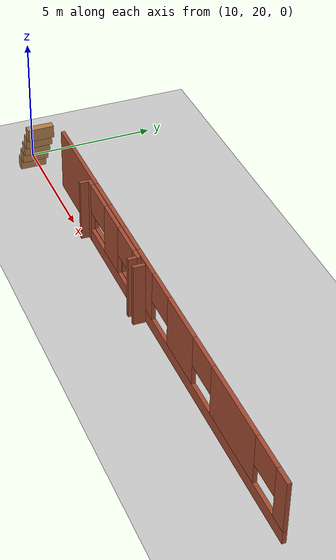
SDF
<sdf version="1.6">
 <world name="default">
  <model name="ground_plane">
   <static>1</static>
   <link name="link">
    <collision name="collision">
     <geometry><plane><normal>0 0 1</normal><size>100 100</size></plane></geometry>
     <surface><friction><ode><mu>100</mu><mu2>50</mu2></ode></friction></surface>
    </collision>
    <visual name="visual">
     <cast_shadows>0</cast_shadows>
     <geometry><plane><normal>0 0 1</normal><size>100 100</size></plane></geometry>
     <material>
      <script><uri>file://media/materials/scripts/gazebo.material</uri><name>Gazebo/Grey</name></script>
     </material>
    </visual>
   </link>
  </model>
  <model name="CVSSP">
   <pose>23.8714 24.094 0 0 -0 0</pose>
   <link name="Stairs_11">
    <visual name="Stairs_11_Visual_0">
     <pose>-13.1847 -4.32692 0.25 0 -0 1.5708</pose>
     <geometry><box><size>1.03 0.296708 0.5</size></box></geometry>
     <material>
      <script><uri>file://media/materials/scripts/gazebo.material</uri><name>Gazebo/Wood</name></script>
      <ambient>1 1 1 1</ambient>
     </material>
    </visual>
    <collision name="Stairs_11_Collision_0">
     <geometry><box><size>1.03 0.296708 0.5</size></box></geometry>
     <pose>-13.1847 -4.32692 0.25 0 -0 1.5708</pose>
    </collision>
    <visual name="Stairs_11_Visual_1">
     <pose>-12.888 -4.32692 0.75 0 -0 1.5708</pose>
     <geometry><box><size>1.03 0.296708 0.5</size></box></geometry>
     <material>
      <script><uri>file://media/materials/scripts/gazebo.material</uri><name>Gazebo/Wood</name></script>
      <ambient>1 1 1 1</ambient>
     </material>
    </visual>
    <collision name="Stairs_11_Collision_1">
     <geometry><box><size>1.03 0.296708 0.5</size></box></geometry>
     <pose>-12.888 -4.32692 0.75 0 -0 1.5708</pose>
    </collision>
    <visual name="Stairs_11_Visual_2">
     <pose>-12.5913 -4.32692 1.25 0 -0 1.5708</pose>
     <geometry><box><size>1.03 0.296708 0.5</size></box></geometry>
     <material>
      <script><uri>file://media/materials/scripts/gazebo.material</uri><name>Gazebo/Wood</name></script>
      <ambient>1 1 1 1</ambient>
     </material>
    </visual>
    <collision name="Stairs_11_Collision_2">
     <geometry><box><size>1.03 0.296708 0.5</size></box></geometry>
     <pose>-12.5913 -4.32692 1.25 0 -0 1.5708</pose>
    </collision>
    <visual name="Stairs_11_Visual_3">
     <pose>-12.2946 -4.32692 1.75 0 -0 1.5708</pose>
     <geometry><box><size>1.03 0.296708 0.5</size></box></geometry>
     <material>
      <script><uri>file://media/materials/scripts/gazebo.material</uri><name>Gazebo/Wood</name></script>
      <ambient>1 1 1 1</ambient>
     </material>
    </visual>
    <collision name="Stairs_11_Collision_3">
     <geometry><box><size>1.03 0.296708 0.5</size></box></geometry>
     <pose>-12.2946 -4.32692 1.75 0 -0 1.5708</pose>
    </collision>
    <visual name="Stairs_11_Visual_4">
     <pose>-11.9979 -4.32692 2.25 0 -0 1.5708</pose>
     <geometry><box><size>1.03 0.296708 0.5</size></box></geometry>
     <material>
      <script><uri>file://media/materials/scripts/gazebo.material</uri><name>Gazebo/Wood</name></script>
      <ambient>1 1 1 1</ambient>
     </material>
    </visual>
    <collision name="Stairs_11_Collision_4">
     <geometry><box><size>1.03 0.296708 0.5</size></box></geometry>
     <pose>-11.9979 -4.32692 2.25 0 -0 1.5708</pose>
    </collision>
   </link>
   <link name="Wall_464">
    <pose>-1.6141 -3.60482 0 0 -0 0</pose>
    <visual name="Wall_464_Visual_0">
     <pose>-7.8743 0 1.25 0 -0 0</pose>
     <geometry><box><size>3.7514 0.15 2.5</size></box></geometry>
     <material>
      <script><uri>file://media/materials/scripts/gazebo.material</uri><name>Gazebo/Bricks</name></script>
      <ambient>1 1 1 1</ambient>
     </material>
    </visual>
    <collision name="Wall_464_Collision_0">
     <geometry><box><size>3.7514 0.15 2.5</size></box></geometry>
     <pose>-7.8743 0 1.25 0 -0 0</pose>
    </collision>
    <visual name="Wall_464_Visual_1">
     <pose>1.8757 0 0.25 0 -0 0</pose>
     <geometry><box><size>15.7486 0.15 0.5</size></box></geometry>
     <material>
      <script><uri>file://media/materials/scripts/gazebo.material</uri><name>Gazebo/Bricks</name></script>
      <ambient>1 1 1 1</ambient>
     </material>
    </visual>
    <collision name="Wall_464_Collision_1">
     <geometry><box><size>15.7486 0.15 0.5</size></box></geometry>
     <pose>1.8757 0 0.25 0 -0 0</pose>
    </collision>
    <visual name="Wall_464_Visual_2">
     <pose>-3.89918 0 1.5 0 -0 0</pose>
     <geometry><box><size>1.36967 0.15 2</size></box></geometry>
     <material>
      <script><uri>file://media/materials/scripts/gazebo.material</uri><name>Gazebo/Bricks</name></script>
      <ambient>1 1 1 1</ambient>
     </material>
    </visual>
    <collision name="Wall_464_Collision_2">
     <geometry><box><size>1.36967 0.15 2</size></box></geometry>
     <pose>-3.89918 0 1.5 0 -0 0</pose>
    </collision>
    <visual name="Wall_464_Visual_3">
     <pose>-1.10672 0 1.5 0 -0 0</pose>
     <geometry><box><size>1.42282 0.15 2</size></box></geometry>
     <material>
      <script><uri>file://media/materials/scripts/gazebo.material</uri><name>Gazebo/Bricks</name></script>
      <ambient>1 1 1 1</ambient>
     </material>
    </visual>
    <collision name="Wall_464_Collision_3">
     <geometry><box><size>1.42282 0.15 2</size></box></geometry>
     <pose>-1.10672 0 1.5 0 -0 0</pose>
    </collision>
    <visual name="Wall_464_Visual_4">
     <pose>2.00621 0 1.5 0 -0 0</pose>
     <geometry><box><size>2.10134 0.15 2</size></box></geometry>
     <material>
      <script><uri>file://media/materials/scripts/gazebo.material</uri><name>Gazebo/Bricks</name></script>
      <ambient>1 1 1 1</ambient>
     </material>
    </visual>
    <collision name="Wall_464_Collision_4">
     <geometry><box><size>2.10134 0.15 2</size></box></geometry>
     <pose>2.00621 0 1.5 0 -0 0</pose>
    </collision>
    <visual name="Wall_464_Visual_5">
     <pose>6.09709 0 1.5 0 -0 0</pose>
     <geometry><box><size>3.19078 0.15 2</size></box></geometry>
     <material>
      <script><uri>file://media/materials/scripts/gazebo.material</uri><name>Gazebo/Bricks</name></script>
      <ambient>1 1 1 1</ambient>
     </material>
    </visual>
    <collision name="Wall_464_Collision_5">
     <geometry><box><size>3.19078 0.15 2</size></box></geometry>
     <pose>6.09709 0 1.5 0 -0 0</pose>
    </collision>
    <visual name="Wall_464_Visual_6">
     <pose>9.40621 0 1.5 0 -0 0</pose>
     <geometry><box><size>0.687583 0.15 2</size></box></geometry>
     <material>
      <script><uri>file://media/materials/scripts/gazebo.material</uri><name>Gazebo/Bricks</name></script>
      <ambient>1 1 1 1</ambient>
     </material>
    </visual>
    <collision name="Wall_464_Collision_6">
     <geometry><box><size>0.687583 0.15 2</size></box></geometry>
     <pose>9.40621 0 1.5 0 -0 0</pose>
    </collision>
    <visual name="Wall_464_Visual_7">
     <pose>-5.29131 0 1.9 0 -0 0</pose>
     <geometry><box><size>1.41459 0.15 1.2</size></box></geometry>
     <material>
      <script><uri>file://media/materials/scripts/gazebo.material</uri><name>Gazebo/Bricks</name></script>
      <ambient>1 1 1 1</ambient>
     </material>
    </visual>
    <collision name="Wall_464_Collision_7">
     <geometry><box><size>1.41459 0.15 1.2</size></box></geometry>
     <pose>-5.29131 0 1.9 0 -0 0</pose>
    </collision>
    <visual name="Wall_464_Visual_8">
     <pose>-2.51624 0 1.9 0 -0 0</pose>
     <geometry><box><size>1.39621 0.15 1.2</size></box></geometry>
     <material>
      <script><uri>file://media/materials/scripts/gazebo.material</uri><name>Gazebo/Bricks</name></script>
      <ambient>1 1 1 1</ambient>
     </material>
    </visual>
    <collision name="Wall_464_Collision_8">
     <geometry><box><size>1.39621 0.15 1.2</size></box></geometry>
     <pose>-2.51624 0 1.9 0 -0 0</pose>
    </collision>
    <visual name="Wall_464_Visual_9">
     <pose>0.280117 0 1.9 0 -0 0</pose>
     <geometry><box><size>1.35085 0.15 1.2</size></box></geometry>
     <material>
      <script><uri>file://media/materials/scripts/gazebo.material</uri><name>Gazebo/Bricks</name></script>
      <ambient>1 1 1 1</ambient>
     </material>
    </visual>
    <collision name="Wall_464_Collision_9">
     <geometry><box><size>1.35085 0.15 1.2</size></box></geometry>
     <pose>0.280117 0 1.9 0 -0 0</pose>
    </collision>
    <visual name="Wall_464_Visual_10">
     <pose>3.77929 0 1.9 0 -0 0</pose>
     <geometry><box><size>1.44482 0.15 1.2</size></box></geometry>
     <material>
      <script><uri>file://media/materials/scripts/gazebo.material</uri><name>Gazebo/Bricks</name></script>
      <ambient>1 1 1 1</ambient>
     </material>
    </visual>
    <collision name="Wall_464_Collision_10">
     <geometry><box><size>1.44482 0.15 1.2</size></box></geometry>
     <pose>3.77929 0 1.9 0 -0 0</pose>
    </collision>
    <visual name="Wall_464_Visual_11">
     <pose>8.37745 0 1.9 0 -0 0</pose>
     <geometry><box><size>1.36994 0.15 1.2</size></box></geometry>
     <material>
      <script><uri>file://media/materials/scripts/gazebo.material</uri><name>Gazebo/Bricks</name></script>
      <ambient>1 1 1 1</ambient>
     </material>
    </visual>
    <collision name="Wall_464_Collision_11">
     <geometry><box><size>1.36994 0.15 1.2</size></box></geometry>
     <pose>8.37745 0 1.9 0 -0 0</pose>
    </collision>
   </link>
   <link name="Wall_803">
    <collision name="Wall_803_Collision">
     <geometry><box><size>0.465304 0.15 2.5</size></box></geometry>
     <pose>0 0 1.25 0 -0 0</pose>
    </collision>
    <visual name="Wall_803_Visual">
     <pose>0 0 1.25 0 -0 0</pose>
     <geometry><box><size>0.465304 0.15 2.5</size></box></geometry>
     <material>
      <script><uri>file://media/materials/scripts/gazebo.material</uri><name>Gazebo/Bricks</name></script>
      <ambient>1 1 1 1</ambient>
     </material>
    </visual>
    <pose>-7.90201 -3.92434 0 0 -0 1.5708</pose>
   </link>
   <link name="Wall_805">
    <pose>-5.46544 -3.76669 0 0 -0 0</pose>
    <visual name="Wall_805_Visual_0">
     <pose>-2.31801 0 1.25 0 -0 0</pose>
     <geometry><box><size>0.363982 0.15 2.5</size></box></geometry>
     <material>
      <script><uri>file://media/materials/scripts/gazebo.material</uri><name>Gazebo/Bricks</name></script>
      <ambient>1 1 1 1</ambient>
     </material>
    </visual>
    <collision name="Wall_805_Collision_0">
     <geometry><box><size>0.363982 0.15 2.5</size></box></geometry>
     <pose>-2.31801 0 1.25 0 -0 0</pose>
    </collision>
    <visual name="Wall_805_Visual_1">
     <pose>0.181991 0 0.25 0 -0 0</pose>
     <geometry><box><size>4.63602 0.15 0.5</size></box></geometry>
     <material>
      <script><uri>file://media/materials/scripts/gazebo.material</uri><name>Gazebo/Bricks</name></script>
      <ambient>1 1 1 1</ambient>
     </material>
    </visual>
    <collision name="Wall_805_Collision_1">
     <geometry><box><size>4.63602 0.15 0.5</size></box></geometry>
     <pose>0.181991 0 0.25 0 -0 0</pose>
    </collision>
    <visual name="Wall_805_Visual_2">
     <pose>-0.045965 0 1.5 0 -0 0</pose>
     <geometry><box><size>1.36592 0.15 2</size></box></geometry>
     <material>
      <script><uri>file://media/materials/scripts/gazebo.material</uri><name>Gazebo/Bricks</name></script>
      <ambient>1 1 1 1</ambient>
     </material>
    </visual>
    <collision name="Wall_805_Collision_2">
     <geometry><box><size>1.36592 0.15 2</size></box></geometry>
     <pose>-0.045965 0 1.5 0 -0 0</pose>
    </collision>
    <visual name="Wall_805_Visual_3">
     <pose>2.26822 0 1.5 0 -0 0</pose>
     <geometry><box><size>0.463553 0.15 2</size></box></geometry>
     <material>
      <script><uri>file://media/materials/scripts/gazebo.material</uri><name>Gazebo/Bricks</name></script>
      <ambient>1 1 1 1</ambient>
     </material>
    </visual>
    <collision name="Wall_805_Collision_3">
     <geometry><box><size>0.463553 0.15 2</size></box></geometry>
     <pose>2.26822 0 1.5 0 -0 0</pose>
    </collision>
    <visual name="Wall_805_Visual_4">
     <pose>-1.43247 0 1.9 0 -0 0</pose>
     <geometry><box><size>1.40709 0.15 1.2</size></box></geometry>
     <material>
      <script><uri>file://media/materials/scripts/gazebo.material</uri><name>Gazebo/Bricks</name></script>
      <ambient>1 1 1 1</ambient>
     </material>
    </visual>
    <collision name="Wall_805_Collision_4">
     <geometry><box><size>1.40709 0.15 1.2</size></box></geometry>
     <pose>-1.43247 0 1.9 0 -0 0</pose>
    </collision>
    <visual name="Wall_805_Visual_5">
     <pose>1.33672 0 1.9 0 -0 0</pose>
     <geometry><box><size>1.39945 0.15 1.2</size></box></geometry>
     <material>
      <script><uri>file://media/materials/scripts/gazebo.material</uri><name>Gazebo/Bricks</name></script>
      <ambient>1 1 1 1</ambient>
     </material>
    </visual>
    <collision name="Wall_805_Collision_5">
     <geometry><box><size>1.39945 0.15 1.2</size></box></geometry>
     <pose>1.33672 0 1.9 0 -0 0</pose>
    </collision>
   </link>
   <link name="Wall_806">
    <collision name="Wall_806_Collision">
     <geometry><box><size>0.465304 0.15 2.5</size></box></geometry>
     <pose>0 0 1.25 0 -0 0</pose>
    </collision>
    <visual name="Wall_806_Visual">
     <pose>0 0 1.25 0 -0 0</pose>
     <geometry><box><size>0.465304 0.15 2.5</size></box></geometry>
     <material>
      <script><uri>file://media/materials/scripts/gazebo.material</uri><name>Gazebo/Bricks</name></script>
      <ambient>1 1 1 1</ambient>
     </material>
    </visual>
    <pose>-3.05201 -3.92434 0 0 0 -1.5708</pose>
   </link>
   <link name="Wall_808">
    <collision name="Wall_808_Collision">
     <geometry><box><size>0.453959 0.15 2.5</size></box></geometry>
     <pose>0 0 1.25 0 -0 0</pose>
    </collision>
    <visual name="Wall_808_Visual">
     <pose>0 0 1.25 0 -0 0</pose>
     <geometry><box><size>0.453959 0.15 2.5</size></box></geometry>
     <material>
      <script><uri>file://media/materials/scripts/gazebo.material</uri><name>Gazebo/Bricks</name></script>
      <ambient>1 1 1 1</ambient>
     </material>
    </visual>
    <pose>-2.58775 -3.93012 0 0 -0 1.53274</pose>
   </link>
   <static>1</static>
  </model>
 </world>
</sdf>
